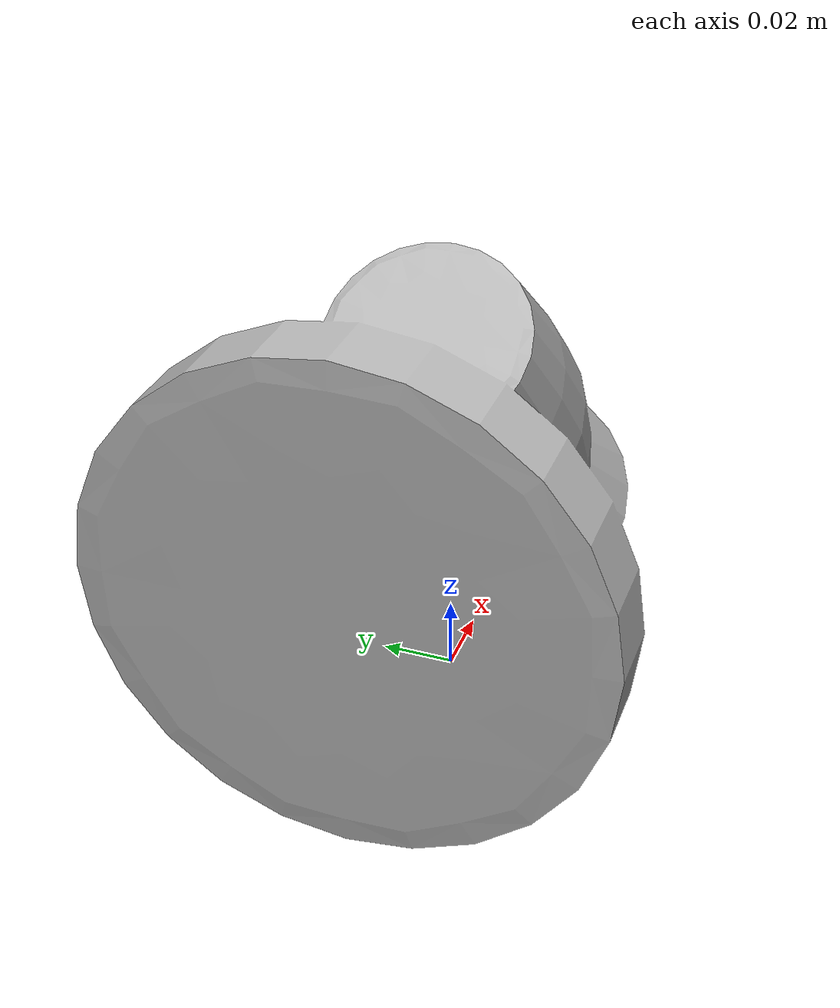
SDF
<?xml version='1.0'?>
<sdf version='1.4'>
  <model name='176'>
    <pose>0 0 0 0 0 0</pose>
    <static>true</static>
    <link name='link'>
      <collision name='collision'>
        <pose>0 0 0 0 0 0</pose>
        <geometry>
          <box>
            <size>0.157536 0.135311 2</size>
          </box>
        </geometry>
      </collision>
      <visual name='visual'>
        <pose>0 0 0 0 0 0</pose>
        <geometry>
          <mesh><uri>model://176/176.dae</uri></mesh>
        </geometry>
      </visual>
    </link>
  </model>
</sdf>
